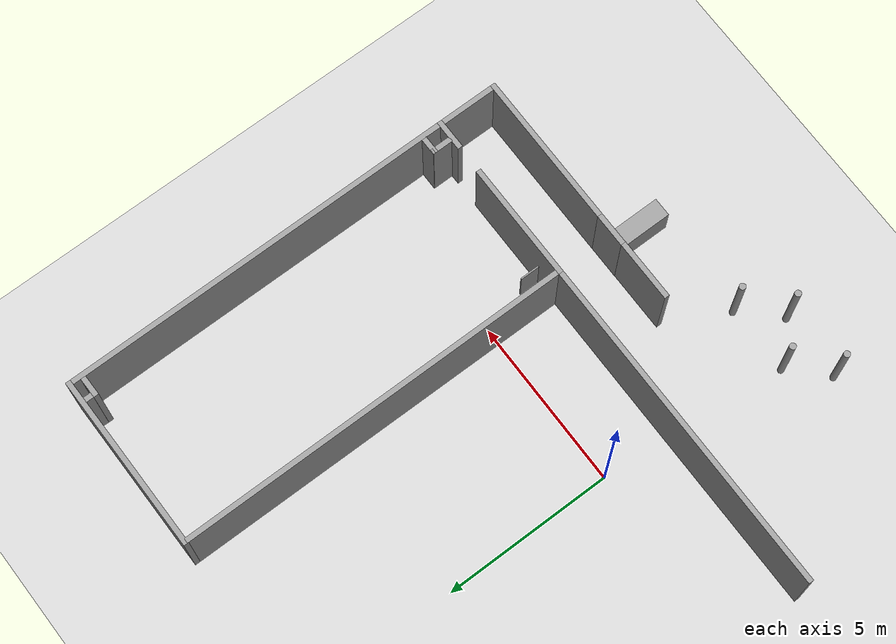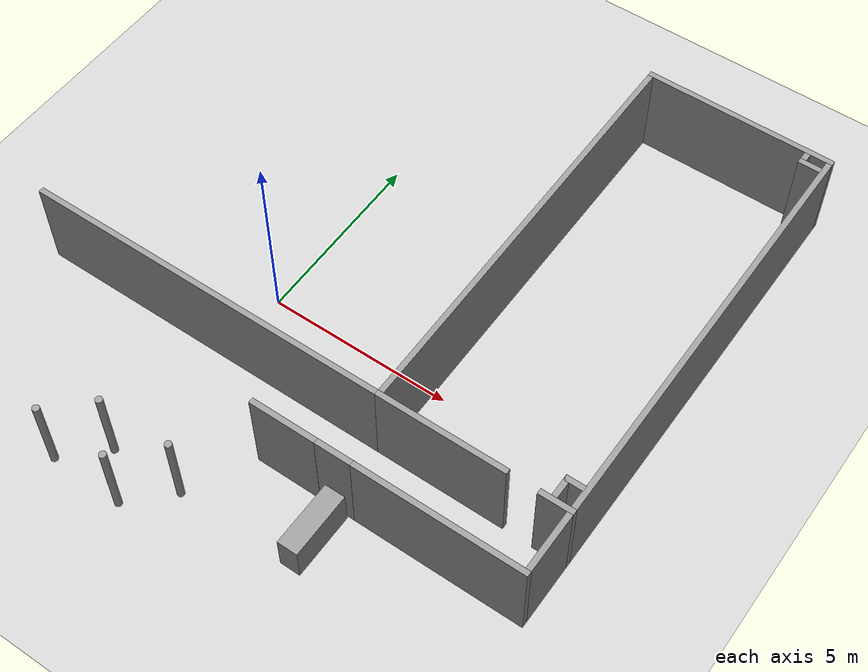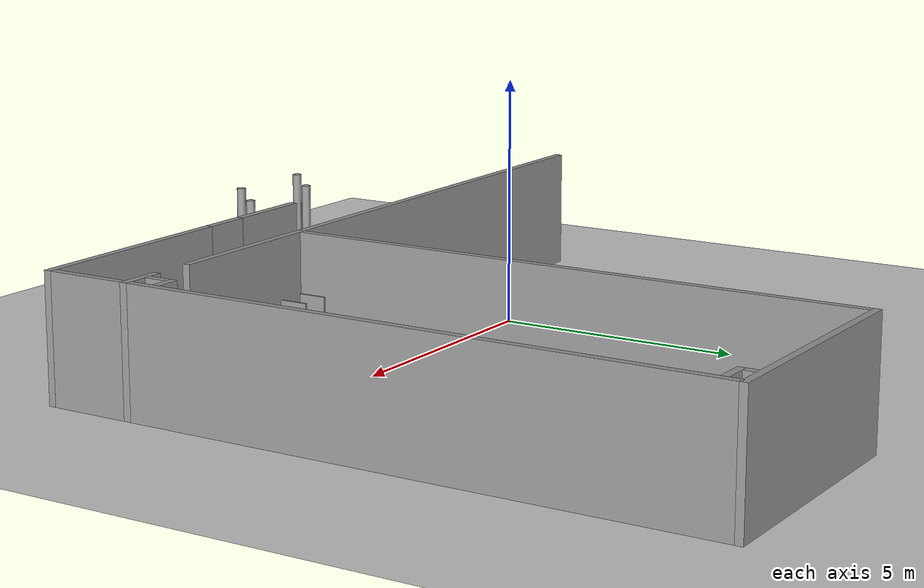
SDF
<sdf version="1.6">
 <world name="default">
  <model name="ground_plane">
   <static>1</static>
   <link name="link">
    <collision name="collision">
     <geometry><plane><normal>0 0 1</normal><size>100 100</size></plane></geometry>
     <surface>
      <contact><collide_bitmask>65535</collide_bitmask></contact>
      <friction><ode><mu>1</mu><mu2>1</mu2></ode></friction>
     </surface>
    </collision>
    <visual name="visual">
     <cast_shadows>0</cast_shadows>
     <geometry><plane><normal>0 0 1</normal><size>100 100</size></plane></geometry>
     <material>
      <script><uri>file://media/materials/scripts/gazebo.material</uri><name>Gazebo/Grey</name></script>
     </material>
    </visual>
   </link>
  </model>
  <model name="frame_503">
   <pose>7.129 3.88164 0 0 -0 0</pose>
   <link name="Wall_10">
    <collision name="Wall_10_Collision">
     <geometry><box><size>11.57 0.15 2.5</size></box></geometry>
     <pose>0 0 1.25 0 -0 0</pose>
    </collision>
    <visual name="Wall_10_Visual">
     <pose>0 0 1.25 0 -0 0</pose>
     <geometry><box><size>11.57 0.15 2.5</size></box></geometry>
     <material>
      <script><uri>file://media/materials/scripts/gazebo.material</uri><name>Gazebo/Grey</name></script>
      <ambient>1 1 1 1</ambient>
     </material>
     <meta><layer>0</layer></meta>
    </visual>
    <pose>2.5249 0.014025 0 0 -0 -1.5708</pose>
   </link>
   <link name="Wall_16">
    <collision name="Wall_16_Collision">
     <geometry><box><size>0.915 0.15 2.5</size></box></geometry>
     <pose>0 0 1.25 0 -0 0</pose>
    </collision>
    <visual name="Wall_16_Visual">
     <pose>0 0 1.25 0 -0 0</pose>
     <geometry><box><size>0.915 0.15 2.5</size></box></geometry>
     <material>
      <script><uri>file://media/materials/scripts/gazebo.material</uri><name>Gazebo/Grey</name></script>
      <ambient>1 1 1 1</ambient>
     </material>
     <meta><layer>0</layer></meta>
    </visual>
    <pose>2.1424 -5.84133 0 0 -0 0</pose>
   </link>
   <link name="Wall_18">
    <collision name="Wall_18_Collision">
     <geometry><box><size>0.61 0.15 2.5</size></box></geometry>
     <pose>0 0 1.25 0 -0 0</pose>
    </collision>
    <visual name="Wall_18_Visual">
     <pose>0 0 1.25 0 -0 0</pose>
     <geometry><box><size>0.61 0.15 2.5</size></box></geometry>
     <material>
      <script><uri>file://media/materials/scripts/gazebo.material</uri><name>Gazebo/Grey</name></script>
      <ambient>1 1 1 1</ambient>
     </material>
     <meta><layer>0</layer></meta>
    </visual>
    <pose>2.02787 -5.48355 0 0 -0 -1.5708</pose>
   </link>
   <link name="Wall_20">
    <collision name="Wall_20_Collision">
     <geometry><box><size>0.515 0.15 2.5</size></box></geometry>
     <pose>0 0 1.25 0 -0 0</pose>
    </collision>
    <visual name="Wall_20_Visual">
     <pose>0 0 1.25 0 -0 0</pose>
     <geometry><box><size>0.515 0.15 2.5</size></box></geometry>
     <material>
      <script><uri>file://media/materials/scripts/gazebo.material</uri><name>Gazebo/Grey</name></script>
      <ambient>1 1 1 1</ambient>
     </material>
     <meta><layer>0</layer></meta>
    </visual>
    <pose>2.21248 -5.24119 0 0 -0 0</pose>
   </link>
   <link name="Wall_22">
    <collision name="Wall_22_Collision">
     <geometry><box><size>3.5 0.15 2.5</size></box></geometry>
     <pose>0 0 1.25 0 -0 0</pose>
    </collision>
    <visual name="Wall_22_Visual">
     <pose>0 0 1.25 0 -0 0</pose>
     <geometry><box><size>3.5 0.15 2.5</size></box></geometry>
     <material>
      <script><uri>file://media/materials/scripts/gazebo.material</uri><name>Gazebo/Grey</name></script>
      <ambient>1 1 1 1</ambient>
     </material>
     <meta><layer>0</layer></meta>
    </visual>
    <pose>-0.849025 -5.83136 0 0 -0 0</pose>
   </link>
   <link name="Wall_27">
    <collision name="Wall_27_Collision">
     <geometry><box><size>0.23 0.15 2.5</size></box></geometry>
     <pose>0 0 1.25 0 -0 0</pose>
    </collision>
    <visual name="Wall_27_Visual">
     <pose>0 0 1.25 0 -0 0</pose>
     <geometry><box><size>0.23 0.15 2.5</size></box></geometry>
     <material>
      <script><uri>file://media/materials/scripts/gazebo.material</uri><name>Gazebo/Grey</name></script>
      <ambient>1 1 1 1</ambient>
     </material>
     <meta><layer>0</layer></meta>
    </visual>
    <pose>1.94245 5.66179 0 0 -0 -1.5708</pose>
   </link>
   <link name="Wall_29">
    <collision name="Wall_29_Collision">
     <geometry><box><size>0.59 0.15 2.5</size></box></geometry>
     <pose>0 0 1.25 0 -0 0</pose>
    </collision>
    <visual name="Wall_29_Visual">
     <pose>0 0 1.25 0 -0 0</pose>
     <geometry><box><size>0.59 0.15 2.5</size></box></geometry>
     <material>
      <script><uri>file://media/materials/scripts/gazebo.material</uri><name>Gazebo/Grey</name></script>
      <ambient>1 1 1 1</ambient>
     </material>
     <meta><layer>0</layer></meta>
    </visual>
    <pose>2.16053 5.47077 0 0 -0 0</pose>
   </link>
   <link name="Wall_33">
    <collision name="Wall_33_Collision">
     <geometry><box><size>0.57 0.04 1.3</size></box></geometry>
     <pose>0 0 0.65 0 -0 0</pose>
    </collision>
    <visual name="Wall_33_Visual">
     <pose>0 0 0.65 0 -0 0</pose>
     <geometry><box><size>0.57 0.04 1.3</size></box></geometry>
     <material>
      <script><uri>file://media/materials/scripts/gazebo.material</uri><name>Gazebo/Grey</name></script>
      <ambient>1 1 1 1</ambient>
     </material>
     <meta><layer>0</layer></meta>
    </visual>
    <pose>-2.42208 -5.46511 0 0 -0 -1.5708</pose>
   </link>
   <link name="Wall_35">
    <collision name="Wall_35_Collision">
     <geometry><box><size>0.57 0.04 1.3</size></box></geometry>
     <pose>0 0 0.65 0 -0 0</pose>
    </collision>
    <visual name="Wall_35_Visual">
     <pose>0 0 0.65 0 -0 0</pose>
     <geometry><box><size>0.57 0.04 1.3</size></box></geometry>
     <material>
      <script><uri>file://media/materials/scripts/gazebo.material</uri><name>Gazebo/Grey</name></script>
      <ambient>1 1 1 1</ambient>
     </material>
     <meta><layer>0</layer></meta>
    </visual>
    <pose>-1.81841 -5.4653 0 0 -0 -1.5708</pose>
   </link>
   <link name="Wall_6">
    <collision name="Wall_6_Collision">
     <geometry><box><size>5.2 0.15 2.5</size></box></geometry>
     <pose>0 0 1.25 0 -0 0</pose>
    </collision>
    <visual name="Wall_6_Visual">
     <pose>0 0 1.25 0 -0 0</pose>
     <geometry><box><size>5.2 0.15 2.5</size></box></geometry>
     <material>
      <script><uri>file://media/materials/scripts/gazebo.material</uri><name>Gazebo/Grey</name></script>
      <ambient>1 1 1 1</ambient>
     </material>
     <meta><layer>0</layer></meta>
    </visual>
    <pose>0 5.84133 0 0 -0 0</pose>
   </link>
   <link name="Wall_8">
    <collision name="Wall_8_Collision">
     <geometry><box><size>11.57 0.15 2.5</size></box></geometry>
     <pose>0 0 1.25 0 -0 0</pose>
    </collision>
    <visual name="Wall_8_Visual">
     <pose>0 0 1.25 0 -0 0</pose>
     <geometry><box><size>11.57 0.15 2.5</size></box></geometry>
     <material>
      <script><uri>file://media/materials/scripts/gazebo.material</uri><name>Gazebo/Grey</name></script>
      <ambient>1 1 1 1</ambient>
     </material>
     <meta><layer>0</layer></meta>
    </visual>
    <pose>-2.52426 0.021404 0 0 -0 -1.5708</pose>
   </link>
   <static>1</static>
  </model>
  <model name="aisle1">
   <pose>9.65276 -2.82844 0 0 -0 0</pose>
   <link name="Wall_2">
    <collision name="Wall_2_Collision">
     <geometry><box><size>1.6 0.15 2.5</size></box></geometry>
     <pose>0 0 1.25 0 -0 0</pose>
    </collision>
    <visual name="Wall_2_Visual">
     <pose>0 0 1.25 0 -0 0</pose>
     <geometry><box><size>1.6 0.15 2.5</size></box></geometry>
     <material>
      <script><uri>file://media/materials/scripts/gazebo.material</uri><name>Gazebo/Grey</name></script>
      <ambient>1 1 1 1</ambient>
     </material>
     <meta><layer>0</layer></meta>
    </visual>
    <pose>0 -0 0 0 -0 -1.5708</pose>
   </link>
   <static>1</static>
  </model>
  <model name="a2">
   <pose>7.44595 -3.70134 0 0 -0 0</pose>
   <link name="Wall_7">
    <collision name="Wall_7_Collision">
     <geometry><box><size>4.56 0.15 2.5</size></box></geometry>
     <pose>0 0 1.25 0 -0 0</pose>
    </collision>
    <visual name="Wall_7_Visual">
     <pose>0 0 1.25 0 -0 0</pose>
     <geometry><box><size>4.56 0.15 2.5</size></box></geometry>
     <material>
      <script><uri>file://media/materials/scripts/gazebo.material</uri><name>Gazebo/Grey</name></script>
      <ambient>1 1 1 1</ambient>
     </material>
     <meta><layer>0</layer></meta>
    </visual>
   </link>
   <static>1</static>
  </model>
  <model name="a5">
   <pose>4.68026 -3.70193 0 0 -0 0</pose>
   <link name="Wall_16">
    <collision name="Wall_16_Collision">
     <geometry><box><size>0.97 0.15 2.5</size></box></geometry>
     <pose>0 0 1.25 0 -0 0</pose>
    </collision>
    <visual name="Wall_16_Visual">
     <pose>0 0 1.25 0 -0 0</pose>
     <geometry><box><size>0.97 0.15 2.5</size></box></geometry>
     <material>
      <script><uri>file://media/materials/scripts/gazebo.material</uri><name>Gazebo/Grey</name></script>
      <ambient>1 1 1 1</ambient>
     </material>
     <meta><layer>0</layer></meta>
    </visual>
   </link>
   <static>1</static>
  </model>
  <model name="a7_0">
   <pose>-0.468482 -1.9505 0 0 -0 0</pose>
   <link name="Wall_44">
    <collision name="Wall_44_Collision">
     <geometry><box><size>10 0.15 2.5</size></box></geometry>
     <pose>0 0 1.25 0 -0 0</pose>
    </collision>
    <visual name="Wall_44_Visual">
     <pose>0 0 1.25 0 -0 0</pose>
     <geometry><box><size>10 0.15 2.5</size></box></geometry>
     <material>
      <script><uri>file://media/materials/scripts/gazebo.material</uri><name>Gazebo/Grey</name></script>
      <ambient>1 1 1 1</ambient>
     </material>
     <meta><layer>0</layer></meta>
    </visual>
   </link>
   <static>1</static>
  </model>
  <model name="frontdesk">
   <static>1</static>
   <link name="link">
    <inertial>
     <mass>1</mass>
     <inertia>
      <ixx>0.166667</ixx>
      <ixy>0</ixy>
      <ixz>0</ixz>
      <iyy>0.166667</iyy>
      <iyz>0</iyz>
      <izz>0.166667</izz>
     </inertia>
    </inertial>
    <visual name="visual">
     <geometry><box><size>0.55 1.74 1</size></box></geometry>
     <material>
      <script><name>Gazebo/Grey</name><uri>file://media/materials/scripts/gazebo.material</uri></script>
      <shader type="vertex"><normal_map>__default__</normal_map></shader>
      <ambient>0.3 0.3 0.3 1</ambient>
      <diffuse>0.7 0.7 0.7 1</diffuse>
      <specular>0.01 0.01 0.01 1</specular>
      <emissive>0 0 0 1</emissive>
     </material>
    </visual>
    <collision name="collision">
     <geometry><box><size>1 1 1</size></box></geometry>
     <surface>
      <friction>
       <ode><mu>1</mu><mu2>1</mu2><fdir1>0 0 0</fdir1><slip1>0</slip1><slip2>0</slip2></ode>
       <torsional>
        <coefficient>1</coefficient>
        <patch_radius>0</patch_radius>
        <surface_radius>0</surface_radius>
        <use_patch_radius>1</use_patch_radius>
        <ode><slip>0</slip></ode>
       </torsional>
      </friction>
      <bounce><restitution_coefficient>0</restitution_coefficient><threshold>1e+06</threshold></bounce>
      <contact>
       <collide_without_contact>0</collide_without_contact>
       <collide_without_contact_bitmask>1</collide_without_contact_bitmask>
       <collide_bitmask>1</collide_bitmask>
       <ode>
        <soft_cfm>0</soft_cfm>
        <soft_erp>0.2</soft_erp>
        <kp>1e+13</kp>
        <kd>1</kd>
        <max_vel>0.01</max_vel>
        <min_depth>0</min_depth>
       </ode>
       <bullet>
        <split_impulse>1</split_impulse>
        <split_impulse_penetration_threshold>-0.01</split_impulse_penetration_threshold>
        <soft_cfm>0</soft_cfm>
        <soft_erp>0.2</soft_erp>
        <kp>1e+13</kp>
        <kd>1</kd>
       </bullet>
      </contact>
     </surface>
    </collision>
   </link>
   <pose>4.72538 -4.70294 0.5 0 -0 0</pose>
  </model>
  <model name="door">
   <link name="Wall_0">
    <pose>-0.099762 0 0 0 -0 0</pose>
    <inertial>
     <mass>1</mass>
     <inertia><ixx>1</ixx><ixy>0</ixy><ixz>0</ixz><iyy>1</iyy><iyz>0</iyz><izz>1</izz></inertia>
    </inertial>
    <visual name="Wall_0_Visual">
     <pose>0 0 1.25 0 -0 0</pose>
     <geometry><box><size>1.8 0.15 2.5</size></box></geometry>
     <material>
      <script><uri>file://media/materials/scripts/gazebo.material</uri><name>Gazebo/Grey</name></script>
      <ambient>1 1 1 1</ambient>
      <shader type="vertex"><normal_map>__default__</normal_map></shader>
      <diffuse>0.7 0.7 0.7 1</diffuse>
      <specular>0.01 0.01 0.01 1</specular>
      <emissive>0 0 0 1</emissive>
     </material>
     <meta><layer>0</layer></meta>
    </visual>
    <collision name="Wall_0_Collision">
     <pose>0 0 1.25 0 -0 0</pose>
     <geometry><box><size>1.6 0.15 2.5</size></box></geometry>
     <surface>
      <friction>
       <ode><mu>1</mu><mu2>1</mu2><fdir1>0 0 0</fdir1><slip1>0</slip1><slip2>0</slip2></ode>
       <torsional>
        <coefficient>1</coefficient>
        <patch_radius>0</patch_radius>
        <surface_radius>0</surface_radius>
        <use_patch_radius>1</use_patch_radius>
        <ode><slip>0</slip></ode>
       </torsional>
      </friction>
      <bounce><restitution_coefficient>0</restitution_coefficient><threshold>1e+06</threshold></bounce>
      <contact>
       <collide_without_contact>0</collide_without_contact>
       <collide_without_contact_bitmask>1</collide_without_contact_bitmask>
       <collide_bitmask>1</collide_bitmask>
       <ode>
        <soft_cfm>0</soft_cfm>
        <soft_erp>0.2</soft_erp>
        <kp>1e+13</kp>
        <kd>1</kd>
        <max_vel>0.01</max_vel>
        <min_depth>0</min_depth>
       </ode>
       <bullet>
        <split_impulse>1</split_impulse>
        <split_impulse_penetration_threshold>-0.01</split_impulse_penetration_threshold>
        <soft_cfm>0</soft_cfm>
        <soft_erp>0.2</soft_erp>
        <kp>1e+13</kp>
        <kd>1</kd>
       </bullet>
      </contact>
     </surface>
    </collision>
   </link>
   <static>1</static>
   <pose>3.39471 -3.70542 0 0 -0 0</pose>
  </model>
  <model name="unit_cylinder">
   <pose>1.50327 -5.49934 1.10608 0 0 -0.004222</pose>
   <static>1</static>
   <link name="link">
    <inertial>
     <mass>1</mass>
     <inertia><ixx>0.145833</ixx><ixy>0</ixy><ixz>0</ixz><iyy>0.145833</iyy><iyz>0</iyz><izz>0.125</izz></inertia>
    </inertial>
    <collision name="collision">
     <geometry><cylinder><radius>0.0945559</radius><length>2.21218</length></cylinder></geometry>
    </collision>
    <visual name="visual">
     <geometry><cylinder><radius>0.0945559</radius><length>2.21218</length></cylinder></geometry>
     <material>
      <script><name>Gazebo/Grey</name><uri>file://media/materials/scripts/gazebo.material</uri></script>
     </material>
    </visual>
   </link>
  </model>
  <model name="unit_cylinder_clone_0">
   <pose>0.506043 -6.51544 1.10608 0 0 -0.002854</pose>
   <static>1</static>
   <link name="link">
    <inertial>
     <mass>1</mass>
     <inertia><ixx>0.145833</ixx><ixy>0</ixy><ixz>0</ixz><iyy>0.145833</iyy><iyz>0</iyz><izz>0.125</izz></inertia>
    </inertial>
    <collision name="collision">
     <geometry><cylinder><radius>0.0945558</radius><length>2.21218</length></cylinder></geometry>
    </collision>
    <visual name="visual">
     <geometry><cylinder><radius>0.0945558</radius><length>2.21218</length></cylinder></geometry>
     <material>
      <script><name>Gazebo/Grey</name><uri>file://media/materials/scripts/gazebo.material</uri></script>
     </material>
    </visual>
   </link>
  </model>
  <model name="unit_cylinder_clone_0_clone_0">
   <pose>-1.49093 -6.47733 1.10608 0 0 -0.003238</pose>
   <static>1</static>
   <link name="link">
    <inertial>
     <mass>1</mass>
     <inertia><ixx>0.145833</ixx><ixy>0</ixy><ixz>0</ixz><iyy>0.145833</iyy><iyz>0</iyz><izz>0.125</izz></inertia>
    </inertial>
    <collision name="collision">
     <geometry><cylinder><radius>0.0945558</radius><length>2.21218</length></cylinder></geometry>
    </collision>
    <visual name="visual">
     <geometry><cylinder><radius>0.0945558</radius><length>2.21218</length></cylinder></geometry>
     <material>
      <script><name>Gazebo/Grey</name><uri>file://media/materials/scripts/gazebo.material</uri></script>
     </material>
    </visual>
   </link>
  </model>
  <model name="unit_cylinder_clone_1">
   <pose>-0.501255 -5.50871 1.10608 -0 1e-06 -0.003172</pose>
   <static>1</static>
   <link name="link">
    <inertial>
     <mass>1</mass>
     <inertia><ixx>0.145833</ixx><ixy>0</ixy><ixz>0</ixz><iyy>0.145833</iyy><iyz>0</iyz><izz>0.125</izz></inertia>
    </inertial>
    <collision name="collision">
     <geometry><cylinder><radius>0.0945558</radius><length>2.21218</length></cylinder></geometry>
    </collision>
    <visual name="visual">
     <geometry><cylinder><radius>0.0945558</radius><length>2.21218</length></cylinder></geometry>
     <material>
      <script><name>Gazebo/Grey</name><uri>file://media/materials/scripts/gazebo.material</uri></script>
     </material>
    </visual>
   </link>
  </model>
 </world>
</sdf>
